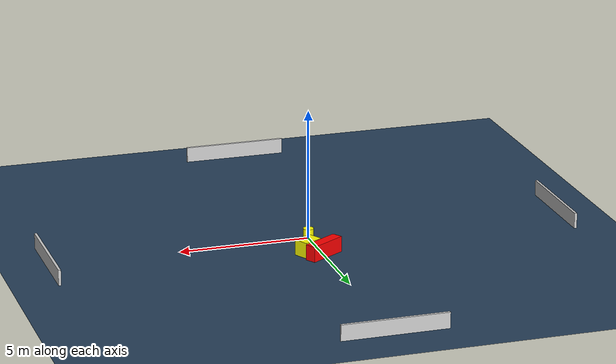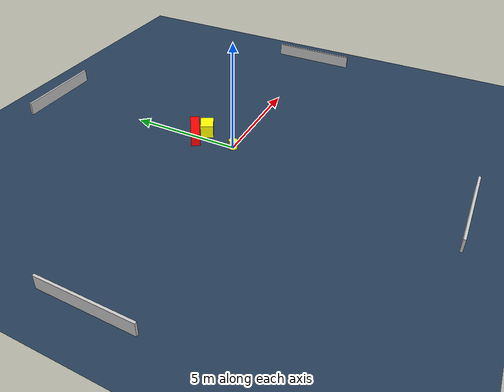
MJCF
<?xml version="1.0" ?>
<mujoco model="generated_environment">
  <option timestep="0.01" integrator="RK4" cone="elliptic"/>
  <default>
    <geom density="1"/>
  </default>
  <asset>
    <texture builtin="gradient" height="3072" name="skybox" rgb1="0.3 0.5 0.7" rgb2="0 0 0" type="skybox" width="512"/>
    <texture builtin="checker" height="300" name="groundplane" rgb1="0.2 0.3 0.4" rgb2="0.1 0.2 0.3" type="2d" width="300"/>
    <material name="groundplane" reflectance="0.2" texrepeat="5 5" texture="groundplane"/>
  </asset>
  <worldbody>
    <light dir="0 0 -1" directional="true" pos="0 0 1.5"/>
    <geom condim="3" friction="0.5 0.005 0.001" material="groundplane" name="floor" pos="0 0 0" size="0 0 0.05" type="plane"/>
    <body name="walls">
      <geom name="wall_1" condim="4" pos="-10.0 0.0 0.3" rgba="0.800000011920929 0.800000011920929 0.800000011920929 1.0" size="0.05 2.0 0.3" type="box"/>
      <geom name="wall_2" condim="4" pos="10.0 0.0 0.3" rgba="0.800000011920929 0.800000011920929 0.800000011920929 1.0" size="0.05 2.0 0.3" type="box"/>
      <geom name="wall_3" condim="4" pos="0.0 -10.0 0.3" rgba="0.800000011920929 0.800000011920929 0.800000011920929 1.0" size="2.0 0.05 0.3" type="box"/>
      <geom name="wall_4" condim="4" pos="0.0 10.0 0.3" rgba="0.800000011920929 0.800000011920929 0.800000011920929 1.0" size="2.0 0.05 0.3" type="box"/>
    </body>
    <body name="robot">
      <joint name="joint_x" type="slide" pos="0 0 0" axis="1 0 0"/>
      <joint name="joint_y" type="slide" pos="0 0 0" axis="0 1 0"/>
      <geom name="robot" type="cylinder" pos="0.0 0.0 0.2" size="0.2 0.2 0.0" mass="5.0" friction="1.0 0.005 0.0001" condim="4" rgba="1.0 1.0 0.0 1.0"/>
    </body>
    <body name="obstacle_1_movable">
      <geom name="obstacle_1_movable" condim="4" pos="0.5156669045188988 1.6156328140514618 0.3" euler="0 0 297.87021298130304" friction="0.0 0.005 0.001" rgba="1.0 1.0 0.0 1.0" size="0.29159903685679556 0.3870757198584661 0.3" type="box" mass="0.1"/>
      <joint type="free"/>
    </body>
    <body name="obstacle_2_static">
      <geom name="obstacle_2_static" condim="4" pos="0.008450511249133303 1.9512288704443541 0.3" euler="0 0 121.96794281055517" friction="0.0 0.005 0.001" rgba="1.0 0.0 0.0 1.0" size="0.20410233755981647 0.7637227530305564 0.3" type="box"/>
    </body>
  </worldbody>
  <actuator>
    <motor name="actuator_x" joint="joint_x" gear="1" ctrlrange="-1 1"/>
    <motor name="actuator_y" joint="joint_y" gear="1" ctrlrange="-1 1"/>
  </actuator>
</mujoco>
